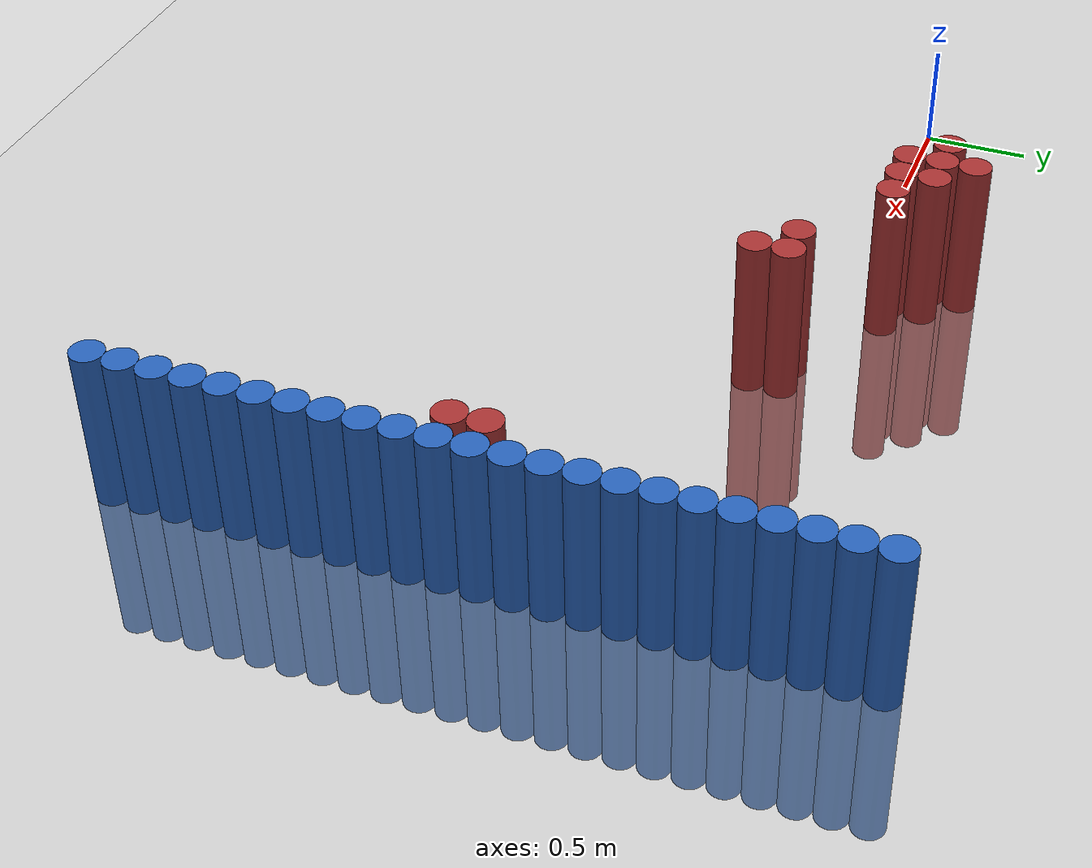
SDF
<sdf version="1.6">
 <world name="default">
  <model name="ground_plane">
   <static>1</static>
   <link name="link">
    <collision name="collision">
     <geometry><plane><normal>0 0 1</normal><size>100 100</size></plane></geometry>
     <surface><friction><ode><mu>100</mu><mu2>50</mu2></ode></friction></surface>
    </collision>
    <visual name="visual">
     <cast_shadows>0</cast_shadows>
     <geometry><plane><normal>0 0 1</normal><size>100 100</size></plane></geometry>
     <material>
      <script><uri>file://media/materials/scripts/gazebo.material</uri><name>Gazebo/Grey</name></script>
     </material>
    </visual>
   </link>
  </model>
  <model name="unit_cylinder_80">
   <static>1</static>
   <pose>3.925000 -2.525000 0.000000 0.000000 0.000000 0.000000</pose>
   <link name="link">
    <inertial>
     <mass>1</mass>
     <inertia><ixx>0.145833</ixx><ixy>0</ixy><ixz>0</ixz><iyy>0.145833</iyy><iyz>0</iyz><izz>0.125</izz></inertia>
    </inertial>
    <collision name="collision">
     <geometry><cylinder><radius>0.075000</radius><length>1.5</length></cylinder></geometry>
    </collision>
    <visual name="visual">
     <geometry><cylinder><radius>0.075000</radius><length>1.5</length></cylinder></geometry>
     <material>
      <ambient>0.152000 0.379000 0.720000 1</ambient>
      <diffuse>0.152000 0.379000 0.720000 1</diffuse>
     </material>
     <material>
      <script><name>Gazebo/Grey</name><uri>file://media/materials/scripts/gazebo.material</uri></script>
     </material>
    </visual>
   </link>
  </model>
  <model name="unit_cylinder_82">
   <static>1</static>
   <pose>3.925000 -2.375000 0.000000 0.000000 0.000000 0.000000</pose>
   <link name="link">
    <inertial>
     <mass>1</mass>
     <inertia><ixx>0.145833</ixx><ixy>0</ixy><ixz>0</ixz><iyy>0.145833</iyy><iyz>0</iyz><izz>0.125</izz></inertia>
    </inertial>
    <collision name="collision">
     <geometry><cylinder><radius>0.075000</radius><length>1.5</length></cylinder></geometry>
    </collision>
    <visual name="visual">
     <geometry><cylinder><radius>0.075000</radius><length>1.5</length></cylinder></geometry>
     <material>
      <ambient>0.152000 0.379000 0.720000 1</ambient>
      <diffuse>0.152000 0.379000 0.720000 1</diffuse>
     </material>
     <material>
      <script><name>Gazebo/Grey</name><uri>file://media/materials/scripts/gazebo.material</uri></script>
     </material>
    </visual>
   </link>
  </model>
  <model name="unit_cylinder_84">
   <static>1</static>
   <pose>3.925000 -2.225000 0.000000 0.000000 0.000000 0.000000</pose>
   <link name="link">
    <inertial>
     <mass>1</mass>
     <inertia><ixx>0.145833</ixx><ixy>0</ixy><ixz>0</ixz><iyy>0.145833</iyy><iyz>0</iyz><izz>0.125</izz></inertia>
    </inertial>
    <collision name="collision">
     <geometry><cylinder><radius>0.075000</radius><length>1.5</length></cylinder></geometry>
    </collision>
    <visual name="visual">
     <geometry><cylinder><radius>0.075000</radius><length>1.5</length></cylinder></geometry>
     <material>
      <ambient>0.152000 0.379000 0.720000 1</ambient>
      <diffuse>0.152000 0.379000 0.720000 1</diffuse>
     </material>
     <material>
      <script><name>Gazebo/Grey</name><uri>file://media/materials/scripts/gazebo.material</uri></script>
     </material>
    </visual>
   </link>
  </model>
  <model name="unit_cylinder_86">
   <static>1</static>
   <pose>3.925000 -2.075000 0.000000 0.000000 0.000000 0.000000</pose>
   <link name="link">
    <inertial>
     <mass>1</mass>
     <inertia><ixx>0.145833</ixx><ixy>0</ixy><ixz>0</ixz><iyy>0.145833</iyy><iyz>0</iyz><izz>0.125</izz></inertia>
    </inertial>
    <collision name="collision">
     <geometry><cylinder><radius>0.075000</radius><length>1.5</length></cylinder></geometry>
    </collision>
    <visual name="visual">
     <geometry><cylinder><radius>0.075000</radius><length>1.5</length></cylinder></geometry>
     <material>
      <ambient>0.152000 0.379000 0.720000 1</ambient>
      <diffuse>0.152000 0.379000 0.720000 1</diffuse>
     </material>
     <material>
      <script><name>Gazebo/Grey</name><uri>file://media/materials/scripts/gazebo.material</uri></script>
     </material>
    </visual>
   </link>
  </model>
  <model name="unit_cylinder_88">
   <static>1</static>
   <pose>3.925000 -1.925000 0.000000 0.000000 0.000000 0.000000</pose>
   <link name="link">
    <inertial>
     <mass>1</mass>
     <inertia><ixx>0.145833</ixx><ixy>0</ixy><ixz>0</ixz><iyy>0.145833</iyy><iyz>0</iyz><izz>0.125</izz></inertia>
    </inertial>
    <collision name="collision">
     <geometry><cylinder><radius>0.075000</radius><length>1.5</length></cylinder></geometry>
    </collision>
    <visual name="visual">
     <geometry><cylinder><radius>0.075000</radius><length>1.5</length></cylinder></geometry>
     <material>
      <ambient>0.152000 0.379000 0.720000 1</ambient>
      <diffuse>0.152000 0.379000 0.720000 1</diffuse>
     </material>
     <material>
      <script><name>Gazebo/Grey</name><uri>file://media/materials/scripts/gazebo.material</uri></script>
     </material>
    </visual>
   </link>
  </model>
  <model name="unit_cylinder_90">
   <static>1</static>
   <pose>3.925000 -1.775000 0.000000 0.000000 0.000000 0.000000</pose>
   <link name="link">
    <inertial>
     <mass>1</mass>
     <inertia><ixx>0.145833</ixx><ixy>0</ixy><ixz>0</ixz><iyy>0.145833</iyy><iyz>0</iyz><izz>0.125</izz></inertia>
    </inertial>
    <collision name="collision">
     <geometry><cylinder><radius>0.075000</radius><length>1.5</length></cylinder></geometry>
    </collision>
    <visual name="visual">
     <geometry><cylinder><radius>0.075000</radius><length>1.5</length></cylinder></geometry>
     <material>
      <ambient>0.152000 0.379000 0.720000 1</ambient>
      <diffuse>0.152000 0.379000 0.720000 1</diffuse>
     </material>
     <material>
      <script><name>Gazebo/Grey</name><uri>file://media/materials/scripts/gazebo.material</uri></script>
     </material>
    </visual>
   </link>
  </model>
  <model name="unit_cylinder_92">
   <static>1</static>
   <pose>3.925000 -1.625000 0.000000 0.000000 0.000000 0.000000</pose>
   <link name="link">
    <inertial>
     <mass>1</mass>
     <inertia><ixx>0.145833</ixx><ixy>0</ixy><ixz>0</ixz><iyy>0.145833</iyy><iyz>0</iyz><izz>0.125</izz></inertia>
    </inertial>
    <collision name="collision">
     <geometry><cylinder><radius>0.075000</radius><length>1.5</length></cylinder></geometry>
    </collision>
    <visual name="visual">
     <geometry><cylinder><radius>0.075000</radius><length>1.5</length></cylinder></geometry>
     <material>
      <ambient>0.152000 0.379000 0.720000 1</ambient>
      <diffuse>0.152000 0.379000 0.720000 1</diffuse>
     </material>
     <material>
      <script><name>Gazebo/Grey</name><uri>file://media/materials/scripts/gazebo.material</uri></script>
     </material>
    </visual>
   </link>
  </model>
  <model name="unit_cylinder_94">
   <static>1</static>
   <pose>3.925000 -1.475000 0.000000 0.000000 0.000000 0.000000</pose>
   <link name="link">
    <inertial>
     <mass>1</mass>
     <inertia><ixx>0.145833</ixx><ixy>0</ixy><ixz>0</ixz><iyy>0.145833</iyy><iyz>0</iyz><izz>0.125</izz></inertia>
    </inertial>
    <collision name="collision">
     <geometry><cylinder><radius>0.075000</radius><length>1.5</length></cylinder></geometry>
    </collision>
    <visual name="visual">
     <geometry><cylinder><radius>0.075000</radius><length>1.5</length></cylinder></geometry>
     <material>
      <ambient>0.152000 0.379000 0.720000 1</ambient>
      <diffuse>0.152000 0.379000 0.720000 1</diffuse>
     </material>
     <material>
      <script><name>Gazebo/Grey</name><uri>file://media/materials/scripts/gazebo.material</uri></script>
     </material>
    </visual>
   </link>
  </model>
  <model name="unit_cylinder_96">
   <static>1</static>
   <pose>3.925000 -1.325000 0.000000 0.000000 0.000000 0.000000</pose>
   <link name="link">
    <inertial>
     <mass>1</mass>
     <inertia><ixx>0.145833</ixx><ixy>0</ixy><ixz>0</ixz><iyy>0.145833</iyy><iyz>0</iyz><izz>0.125</izz></inertia>
    </inertial>
    <collision name="collision">
     <geometry><cylinder><radius>0.075000</radius><length>1.5</length></cylinder></geometry>
    </collision>
    <visual name="visual">
     <geometry><cylinder><radius>0.075000</radius><length>1.5</length></cylinder></geometry>
     <material>
      <ambient>0.152000 0.379000 0.720000 1</ambient>
      <diffuse>0.152000 0.379000 0.720000 1</diffuse>
     </material>
     <material>
      <script><name>Gazebo/Grey</name><uri>file://media/materials/scripts/gazebo.material</uri></script>
     </material>
    </visual>
   </link>
  </model>
  <model name="unit_cylinder_98">
   <static>1</static>
   <pose>3.925000 -1.175000 0.000000 0.000000 0.000000 0.000000</pose>
   <link name="link">
    <inertial>
     <mass>1</mass>
     <inertia><ixx>0.145833</ixx><ixy>0</ixy><ixz>0</ixz><iyy>0.145833</iyy><iyz>0</iyz><izz>0.125</izz></inertia>
    </inertial>
    <collision name="collision">
     <geometry><cylinder><radius>0.075000</radius><length>1.5</length></cylinder></geometry>
    </collision>
    <visual name="visual">
     <geometry><cylinder><radius>0.075000</radius><length>1.5</length></cylinder></geometry>
     <material>
      <ambient>0.152000 0.379000 0.720000 1</ambient>
      <diffuse>0.152000 0.379000 0.720000 1</diffuse>
     </material>
     <material>
      <script><name>Gazebo/Grey</name><uri>file://media/materials/scripts/gazebo.material</uri></script>
     </material>
    </visual>
   </link>
  </model>
  <model name="unit_cylinder_100">
   <static>1</static>
   <pose>3.925000 -1.025000 0.000000 0.000000 0.000000 0.000000</pose>
   <link name="link">
    <inertial>
     <mass>1</mass>
     <inertia><ixx>0.145833</ixx><ixy>0</ixy><ixz>0</ixz><iyy>0.145833</iyy><iyz>0</iyz><izz>0.125</izz></inertia>
    </inertial>
    <collision name="collision">
     <geometry><cylinder><radius>0.075000</radius><length>1.5</length></cylinder></geometry>
    </collision>
    <visual name="visual">
     <geometry><cylinder><radius>0.075000</radius><length>1.5</length></cylinder></geometry>
     <material>
      <ambient>0.152000 0.379000 0.720000 1</ambient>
      <diffuse>0.152000 0.379000 0.720000 1</diffuse>
     </material>
     <material>
      <script><name>Gazebo/Grey</name><uri>file://media/materials/scripts/gazebo.material</uri></script>
     </material>
    </visual>
   </link>
  </model>
  <model name="unit_cylinder_102">
   <static>1</static>
   <pose>3.925000 -0.875000 0.000000 0.000000 0.000000 0.000000</pose>
   <link name="link">
    <inertial>
     <mass>1</mass>
     <inertia><ixx>0.145833</ixx><ixy>0</ixy><ixz>0</ixz><iyy>0.145833</iyy><iyz>0</iyz><izz>0.125</izz></inertia>
    </inertial>
    <collision name="collision">
     <geometry><cylinder><radius>0.075000</radius><length>1.5</length></cylinder></geometry>
    </collision>
    <visual name="visual">
     <geometry><cylinder><radius>0.075000</radius><length>1.5</length></cylinder></geometry>
     <material>
      <ambient>0.152000 0.379000 0.720000 1</ambient>
      <diffuse>0.152000 0.379000 0.720000 1</diffuse>
     </material>
     <material>
      <script><name>Gazebo/Grey</name><uri>file://media/materials/scripts/gazebo.material</uri></script>
     </material>
    </visual>
   </link>
  </model>
  <model name="unit_cylinder_104">
   <static>1</static>
   <pose>3.925000 -0.725000 0.000000 0.000000 0.000000 0.000000</pose>
   <link name="link">
    <inertial>
     <mass>1</mass>
     <inertia><ixx>0.145833</ixx><ixy>0</ixy><ixz>0</ixz><iyy>0.145833</iyy><iyz>0</iyz><izz>0.125</izz></inertia>
    </inertial>
    <collision name="collision">
     <geometry><cylinder><radius>0.075000</radius><length>1.5</length></cylinder></geometry>
    </collision>
    <visual name="visual">
     <geometry><cylinder><radius>0.075000</radius><length>1.5</length></cylinder></geometry>
     <material>
      <ambient>0.152000 0.379000 0.720000 1</ambient>
      <diffuse>0.152000 0.379000 0.720000 1</diffuse>
     </material>
     <material>
      <script><name>Gazebo/Grey</name><uri>file://media/materials/scripts/gazebo.material</uri></script>
     </material>
    </visual>
   </link>
  </model>
  <model name="unit_cylinder_106">
   <static>1</static>
   <pose>3.925000 -0.575000 0.000000 0.000000 0.000000 0.000000</pose>
   <link name="link">
    <inertial>
     <mass>1</mass>
     <inertia><ixx>0.145833</ixx><ixy>0</ixy><ixz>0</ixz><iyy>0.145833</iyy><iyz>0</iyz><izz>0.125</izz></inertia>
    </inertial>
    <collision name="collision">
     <geometry><cylinder><radius>0.075000</radius><length>1.5</length></cylinder></geometry>
    </collision>
    <visual name="visual">
     <geometry><cylinder><radius>0.075000</radius><length>1.5</length></cylinder></geometry>
     <material>
      <ambient>0.152000 0.379000 0.720000 1</ambient>
      <diffuse>0.152000 0.379000 0.720000 1</diffuse>
     </material>
     <material>
      <script><name>Gazebo/Grey</name><uri>file://media/materials/scripts/gazebo.material</uri></script>
     </material>
    </visual>
   </link>
  </model>
  <model name="unit_cylinder_108">
   <static>1</static>
   <pose>3.925000 -0.425000 0.000000 0.000000 0.000000 0.000000</pose>
   <link name="link">
    <inertial>
     <mass>1</mass>
     <inertia><ixx>0.145833</ixx><ixy>0</ixy><ixz>0</ixz><iyy>0.145833</iyy><iyz>0</iyz><izz>0.125</izz></inertia>
    </inertial>
    <collision name="collision">
     <geometry><cylinder><radius>0.075000</radius><length>1.5</length></cylinder></geometry>
    </collision>
    <visual name="visual">
     <geometry><cylinder><radius>0.075000</radius><length>1.5</length></cylinder></geometry>
     <material>
      <ambient>0.152000 0.379000 0.720000 1</ambient>
      <diffuse>0.152000 0.379000 0.720000 1</diffuse>
     </material>
     <material>
      <script><name>Gazebo/Grey</name><uri>file://media/materials/scripts/gazebo.material</uri></script>
     </material>
    </visual>
   </link>
  </model>
  <model name="unit_cylinder_110">
   <static>1</static>
   <pose>3.925000 -0.275000 0.000000 0.000000 0.000000 0.000000</pose>
   <link name="link">
    <inertial>
     <mass>1</mass>
     <inertia><ixx>0.145833</ixx><ixy>0</ixy><ixz>0</ixz><iyy>0.145833</iyy><iyz>0</iyz><izz>0.125</izz></inertia>
    </inertial>
    <collision name="collision">
     <geometry><cylinder><radius>0.075000</radius><length>1.5</length></cylinder></geometry>
    </collision>
    <visual name="visual">
     <geometry><cylinder><radius>0.075000</radius><length>1.5</length></cylinder></geometry>
     <material>
      <ambient>0.152000 0.379000 0.720000 1</ambient>
      <diffuse>0.152000 0.379000 0.720000 1</diffuse>
     </material>
     <material>
      <script><name>Gazebo/Grey</name><uri>file://media/materials/scripts/gazebo.material</uri></script>
     </material>
    </visual>
   </link>
  </model>
  <model name="unit_cylinder_112">
   <static>1</static>
   <pose>3.925000 -0.125000 0.000000 0.000000 0.000000 0.000000</pose>
   <link name="link">
    <inertial>
     <mass>1</mass>
     <inertia><ixx>0.145833</ixx><ixy>0</ixy><ixz>0</ixz><iyy>0.145833</iyy><iyz>0</iyz><izz>0.125</izz></inertia>
    </inertial>
    <collision name="collision">
     <geometry><cylinder><radius>0.075000</radius><length>1.5</length></cylinder></geometry>
    </collision>
    <visual name="visual">
     <geometry><cylinder><radius>0.075000</radius><length>1.5</length></cylinder></geometry>
     <material>
      <ambient>0.152000 0.379000 0.720000 1</ambient>
      <diffuse>0.152000 0.379000 0.720000 1</diffuse>
     </material>
     <material>
      <script><name>Gazebo/Grey</name><uri>file://media/materials/scripts/gazebo.material</uri></script>
     </material>
    </visual>
   </link>
  </model>
  <model name="unit_cylinder_114">
   <static>1</static>
   <pose>3.925000 0.025000 0.000000 0.000000 0.000000 0.000000</pose>
   <link name="link">
    <inertial>
     <mass>1</mass>
     <inertia><ixx>0.145833</ixx><ixy>0</ixy><ixz>0</ixz><iyy>0.145833</iyy><iyz>0</iyz><izz>0.125</izz></inertia>
    </inertial>
    <collision name="collision">
     <geometry><cylinder><radius>0.075000</radius><length>1.5</length></cylinder></geometry>
    </collision>
    <visual name="visual">
     <geometry><cylinder><radius>0.075000</radius><length>1.5</length></cylinder></geometry>
     <material>
      <ambient>0.152000 0.379000 0.720000 1</ambient>
      <diffuse>0.152000 0.379000 0.720000 1</diffuse>
     </material>
     <material>
      <script><name>Gazebo/Grey</name><uri>file://media/materials/scripts/gazebo.material</uri></script>
     </material>
    </visual>
   </link>
  </model>
  <model name="unit_cylinder_116">
   <static>1</static>
   <pose>3.925000 0.175000 0.000000 0.000000 0.000000 0.000000</pose>
   <link name="link">
    <inertial>
     <mass>1</mass>
     <inertia><ixx>0.145833</ixx><ixy>0</ixy><ixz>0</ixz><iyy>0.145833</iyy><iyz>0</iyz><izz>0.125</izz></inertia>
    </inertial>
    <collision name="collision">
     <geometry><cylinder><radius>0.075000</radius><length>1.5</length></cylinder></geometry>
    </collision>
    <visual name="visual">
     <geometry><cylinder><radius>0.075000</radius><length>1.5</length></cylinder></geometry>
     <material>
      <ambient>0.152000 0.379000 0.720000 1</ambient>
      <diffuse>0.152000 0.379000 0.720000 1</diffuse>
     </material>
     <material>
      <script><name>Gazebo/Grey</name><uri>file://media/materials/scripts/gazebo.material</uri></script>
     </material>
    </visual>
   </link>
  </model>
  <model name="unit_cylinder_118">
   <static>1</static>
   <pose>3.925000 0.325000 0.000000 0.000000 0.000000 0.000000</pose>
   <link name="link">
    <inertial>
     <mass>1</mass>
     <inertia><ixx>0.145833</ixx><ixy>0</ixy><ixz>0</ixz><iyy>0.145833</iyy><iyz>0</iyz><izz>0.125</izz></inertia>
    </inertial>
    <collision name="collision">
     <geometry><cylinder><radius>0.075000</radius><length>1.5</length></cylinder></geometry>
    </collision>
    <visual name="visual">
     <geometry><cylinder><radius>0.075000</radius><length>1.5</length></cylinder></geometry>
     <material>
      <ambient>0.152000 0.379000 0.720000 1</ambient>
      <diffuse>0.152000 0.379000 0.720000 1</diffuse>
     </material>
     <material>
      <script><name>Gazebo/Grey</name><uri>file://media/materials/scripts/gazebo.material</uri></script>
     </material>
    </visual>
   </link>
  </model>
  <model name="unit_cylinder_120">
   <static>1</static>
   <pose>3.925000 0.475000 0.000000 0.000000 0.000000 0.000000</pose>
   <link name="link">
    <inertial>
     <mass>1</mass>
     <inertia><ixx>0.145833</ixx><ixy>0</ixy><ixz>0</ixz><iyy>0.145833</iyy><iyz>0</iyz><izz>0.125</izz></inertia>
    </inertial>
    <collision name="collision">
     <geometry><cylinder><radius>0.075000</radius><length>1.5</length></cylinder></geometry>
    </collision>
    <visual name="visual">
     <geometry><cylinder><radius>0.075000</radius><length>1.5</length></cylinder></geometry>
     <material>
      <ambient>0.152000 0.379000 0.720000 1</ambient>
      <diffuse>0.152000 0.379000 0.720000 1</diffuse>
     </material>
     <material>
      <script><name>Gazebo/Grey</name><uri>file://media/materials/scripts/gazebo.material</uri></script>
     </material>
    </visual>
   </link>
  </model>
  <model name="unit_cylinder_122">
   <static>1</static>
   <pose>3.925000 0.625000 0.000000 0.000000 0.000000 0.000000</pose>
   <link name="link">
    <inertial>
     <mass>1</mass>
     <inertia><ixx>0.145833</ixx><ixy>0</ixy><ixz>0</ixz><iyy>0.145833</iyy><iyz>0</iyz><izz>0.125</izz></inertia>
    </inertial>
    <collision name="collision">
     <geometry><cylinder><radius>0.075000</radius><length>1.5</length></cylinder></geometry>
    </collision>
    <visual name="visual">
     <geometry><cylinder><radius>0.075000</radius><length>1.5</length></cylinder></geometry>
     <material>
      <ambient>0.152000 0.379000 0.720000 1</ambient>
      <diffuse>0.152000 0.379000 0.720000 1</diffuse>
     </material>
     <material>
      <script><name>Gazebo/Grey</name><uri>file://media/materials/scripts/gazebo.material</uri></script>
     </material>
    </visual>
   </link>
  </model>
  <model name="unit_cylinder_124">
   <static>1</static>
   <pose>3.925000 0.775000 0.000000 0.000000 0.000000 0.000000</pose>
   <link name="link">
    <inertial>
     <mass>1</mass>
     <inertia><ixx>0.145833</ixx><ixy>0</ixy><ixz>0</ixz><iyy>0.145833</iyy><iyz>0</iyz><izz>0.125</izz></inertia>
    </inertial>
    <collision name="collision">
     <geometry><cylinder><radius>0.075000</radius><length>1.5</length></cylinder></geometry>
    </collision>
    <visual name="visual">
     <geometry><cylinder><radius>0.075000</radius><length>1.5</length></cylinder></geometry>
     <material>
      <ambient>0.152000 0.379000 0.720000 1</ambient>
      <diffuse>0.152000 0.379000 0.720000 1</diffuse>
     </material>
     <material>
      <script><name>Gazebo/Grey</name><uri>file://media/materials/scripts/gazebo.material</uri></script>
     </material>
    </visual>
   </link>
  </model>
  <model name="unit_cylinder_322">
   <static>1</static>
   <pose>1.225000 0.325000 0.000000 0.000000 0.000000 0.000000</pose>
   <link name="link">
    <inertial>
     <mass>1</mass>
     <inertia><ixx>0.145833</ixx><ixy>0</ixy><ixz>0</ixz><iyy>0.145833</iyy><iyz>0</iyz><izz>0.125</izz></inertia>
    </inertial>
    <collision name="collision">
     <geometry><cylinder><radius>0.075000</radius><length>1.5</length></cylinder></geometry>
    </collision>
    <visual name="visual">
     <geometry><cylinder><radius>0.075000</radius><length>1.5</length></cylinder></geometry>
     <material>
      <ambient>0.648000 0.192000 0.192000 1</ambient>
      <diffuse>0.648000 0.192000 0.192000 1</diffuse>
     </material>
     <material>
      <script><name>Gazebo/Grey</name><uri>file://media/materials/scripts/gazebo.material</uri></script>
     </material>
    </visual>
   </link>
  </model>
  <model name="unit_cylinder_324">
   <static>1</static>
   <pose>1.375000 0.175000 0.000000 0.000000 0.000000 0.000000</pose>
   <link name="link">
    <inertial>
     <mass>1</mass>
     <inertia><ixx>0.145833</ixx><ixy>0</ixy><ixz>0</ixz><iyy>0.145833</iyy><iyz>0</iyz><izz>0.125</izz></inertia>
    </inertial>
    <collision name="collision">
     <geometry><cylinder><radius>0.075000</radius><length>1.5</length></cylinder></geometry>
    </collision>
    <visual name="visual">
     <geometry><cylinder><radius>0.075000</radius><length>1.5</length></cylinder></geometry>
     <material>
      <ambient>0.648000 0.192000 0.192000 1</ambient>
      <diffuse>0.648000 0.192000 0.192000 1</diffuse>
     </material>
     <material>
      <script><name>Gazebo/Grey</name><uri>file://media/materials/scripts/gazebo.material</uri></script>
     </material>
    </visual>
   </link>
  </model>
  <model name="unit_cylinder_325">
   <static>1</static>
   <pose>1.375000 0.325000 0.000000 0.000000 0.000000 0.000000</pose>
   <link name="link">
    <inertial>
     <mass>1</mass>
     <inertia><ixx>0.145833</ixx><ixy>0</ixy><ixz>0</ixz><iyy>0.145833</iyy><iyz>0</iyz><izz>0.125</izz></inertia>
    </inertial>
    <collision name="collision">
     <geometry><cylinder><radius>0.075000</radius><length>1.5</length></cylinder></geometry>
    </collision>
    <visual name="visual">
     <geometry><cylinder><radius>0.075000</radius><length>1.5</length></cylinder></geometry>
     <material>
      <ambient>0.648000 0.192000 0.192000 1</ambient>
      <diffuse>0.648000 0.192000 0.192000 1</diffuse>
     </material>
     <material>
      <script><name>Gazebo/Grey</name><uri>file://media/materials/scripts/gazebo.material</uri></script>
     </material>
    </visual>
   </link>
  </model>
  <model name="unit_cylinder_326">
   <static>1</static>
   <pose>1.375000 0.475000 0.000000 0.000000 0.000000 0.000000</pose>
   <link name="link">
    <inertial>
     <mass>1</mass>
     <inertia><ixx>0.145833</ixx><ixy>0</ixy><ixz>0</ixz><iyy>0.145833</iyy><iyz>0</iyz><izz>0.125</izz></inertia>
    </inertial>
    <collision name="collision">
     <geometry><cylinder><radius>0.075000</radius><length>1.5</length></cylinder></geometry>
    </collision>
    <visual name="visual">
     <geometry><cylinder><radius>0.075000</radius><length>1.5</length></cylinder></geometry>
     <material>
      <ambient>0.648000 0.192000 0.192000 1</ambient>
      <diffuse>0.648000 0.192000 0.192000 1</diffuse>
     </material>
     <material>
      <script><name>Gazebo/Grey</name><uri>file://media/materials/scripts/gazebo.material</uri></script>
     </material>
    </visual>
   </link>
  </model>
  <model name="unit_cylinder_327">
   <static>1</static>
   <pose>1.525000 0.175000 0.000000 0.000000 0.000000 0.000000</pose>
   <link name="link">
    <inertial>
     <mass>1</mass>
     <inertia><ixx>0.145833</ixx><ixy>0</ixy><ixz>0</ixz><iyy>0.145833</iyy><iyz>0</iyz><izz>0.125</izz></inertia>
    </inertial>
    <collision name="collision">
     <geometry><cylinder><radius>0.075000</radius><length>1.5</length></cylinder></geometry>
    </collision>
    <visual name="visual">
     <geometry><cylinder><radius>0.075000</radius><length>1.5</length></cylinder></geometry>
     <material>
      <ambient>0.648000 0.192000 0.192000 1</ambient>
      <diffuse>0.648000 0.192000 0.192000 1</diffuse>
     </material>
     <material>
      <script><name>Gazebo/Grey</name><uri>file://media/materials/scripts/gazebo.material</uri></script>
     </material>
    </visual>
   </link>
  </model>
  <model name="unit_cylinder_328">
   <static>1</static>
   <pose>1.525000 0.325000 0.000000 0.000000 0.000000 0.000000</pose>
   <link name="link">
    <inertial>
     <mass>1</mass>
     <inertia><ixx>0.145833</ixx><ixy>0</ixy><ixz>0</ixz><iyy>0.145833</iyy><iyz>0</iyz><izz>0.125</izz></inertia>
    </inertial>
    <collision name="collision">
     <geometry><cylinder><radius>0.075000</radius><length>1.5</length></cylinder></geometry>
    </collision>
    <visual name="visual">
     <geometry><cylinder><radius>0.075000</radius><length>1.5</length></cylinder></geometry>
     <material>
      <ambient>0.648000 0.192000 0.192000 1</ambient>
      <diffuse>0.648000 0.192000 0.192000 1</diffuse>
     </material>
     <material>
      <script><name>Gazebo/Grey</name><uri>file://media/materials/scripts/gazebo.material</uri></script>
     </material>
    </visual>
   </link>
  </model>
  <model name="unit_cylinder_330">
   <static>1</static>
   <pose>1.675000 0.175000 0.000000 0.000000 0.000000 0.000000</pose>
   <link name="link">
    <inertial>
     <mass>1</mass>
     <inertia><ixx>0.145833</ixx><ixy>0</ixy><ixz>0</ixz><iyy>0.145833</iyy><iyz>0</iyz><izz>0.125</izz></inertia>
    </inertial>
    <collision name="collision">
     <geometry><cylinder><radius>0.075000</radius><length>1.5</length></cylinder></geometry>
    </collision>
    <visual name="visual">
     <geometry><cylinder><radius>0.075000</radius><length>1.5</length></cylinder></geometry>
     <material>
      <ambient>0.648000 0.192000 0.192000 1</ambient>
      <diffuse>0.648000 0.192000 0.192000 1</diffuse>
     </material>
     <material>
      <script><name>Gazebo/Grey</name><uri>file://media/materials/scripts/gazebo.material</uri></script>
     </material>
    </visual>
   </link>
  </model>
  <model name="unit_cylinder_341">
   <static>1</static>
   <pose>2.125000 -0.125000 0.000000 0.000000 0.000000 0.000000</pose>
   <link name="link">
    <inertial>
     <mass>1</mass>
     <inertia><ixx>0.145833</ixx><ixy>0</ixy><ixz>0</ixz><iyy>0.145833</iyy><iyz>0</iyz><izz>0.125</izz></inertia>
    </inertial>
    <collision name="collision">
     <geometry><cylinder><radius>0.075000</radius><length>1.5</length></cylinder></geometry>
    </collision>
    <visual name="visual">
     <geometry><cylinder><radius>0.075000</radius><length>1.5</length></cylinder></geometry>
     <material>
      <ambient>0.648000 0.192000 0.192000 1</ambient>
      <diffuse>0.648000 0.192000 0.192000 1</diffuse>
     </material>
     <material>
      <script><name>Gazebo/Grey</name><uri>file://media/materials/scripts/gazebo.material</uri></script>
     </material>
    </visual>
   </link>
  </model>
  <model name="unit_cylinder_344">
   <static>1</static>
   <pose>2.275000 -0.275000 0.000000 0.000000 0.000000 0.000000</pose>
   <link name="link">
    <inertial>
     <mass>1</mass>
     <inertia><ixx>0.145833</ixx><ixy>0</ixy><ixz>0</ixz><iyy>0.145833</iyy><iyz>0</iyz><izz>0.125</izz></inertia>
    </inertial>
    <collision name="collision">
     <geometry><cylinder><radius>0.075000</radius><length>1.5</length></cylinder></geometry>
    </collision>
    <visual name="visual">
     <geometry><cylinder><radius>0.075000</radius><length>1.5</length></cylinder></geometry>
     <material>
      <ambient>0.648000 0.192000 0.192000 1</ambient>
      <diffuse>0.648000 0.192000 0.192000 1</diffuse>
     </material>
     <material>
      <script><name>Gazebo/Grey</name><uri>file://media/materials/scripts/gazebo.material</uri></script>
     </material>
    </visual>
   </link>
  </model>
  <model name="unit_cylinder_345">
   <static>1</static>
   <pose>2.275000 -0.125000 0.000000 0.000000 0.000000 0.000000</pose>
   <link name="link">
    <inertial>
     <mass>1</mass>
     <inertia><ixx>0.145833</ixx><ixy>0</ixy><ixz>0</ixz><iyy>0.145833</iyy><iyz>0</iyz><izz>0.125</izz></inertia>
    </inertial>
    <collision name="collision">
     <geometry><cylinder><radius>0.075000</radius><length>1.5</length></cylinder></geometry>
    </collision>
    <visual name="visual">
     <geometry><cylinder><radius>0.075000</radius><length>1.5</length></cylinder></geometry>
     <material>
      <ambient>0.648000 0.192000 0.192000 1</ambient>
      <diffuse>0.648000 0.192000 0.192000 1</diffuse>
     </material>
     <material>
      <script><name>Gazebo/Grey</name><uri>file://media/materials/scripts/gazebo.material</uri></script>
     </material>
    </visual>
   </link>
  </model>
  <model name="unit_cylinder_358">
   <static>1</static>
   <pose>3.775000 -1.025000 0.000000 0.000000 0.000000 0.000000</pose>
   <link name="link">
    <inertial>
     <mass>1</mass>
     <inertia><ixx>0.145833</ixx><ixy>0</ixy><ixz>0</ixz><iyy>0.145833</iyy><iyz>0</iyz><izz>0.125</izz></inertia>
    </inertial>
    <collision name="collision">
     <geometry><cylinder><radius>0.075000</radius><length>1.5</length></cylinder></geometry>
    </collision>
    <visual name="visual">
     <geometry><cylinder><radius>0.075000</radius><length>1.5</length></cylinder></geometry>
     <material>
      <ambient>0.648000 0.192000 0.192000 1</ambient>
      <diffuse>0.648000 0.192000 0.192000 1</diffuse>
     </material>
     <material>
      <script><name>Gazebo/Grey</name><uri>file://media/materials/scripts/gazebo.material</uri></script>
     </material>
    </visual>
   </link>
  </model>
  <model name="unit_cylinder_359">
   <static>1</static>
   <pose>3.775000 -0.875000 0.000000 0.000000 0.000000 0.000000</pose>
   <link name="link">
    <inertial>
     <mass>1</mass>
     <inertia><ixx>0.145833</ixx><ixy>0</ixy><ixz>0</ixz><iyy>0.145833</iyy><iyz>0</iyz><izz>0.125</izz></inertia>
    </inertial>
    <collision name="collision">
     <geometry><cylinder><radius>0.075000</radius><length>1.5</length></cylinder></geometry>
    </collision>
    <visual name="visual">
     <geometry><cylinder><radius>0.075000</radius><length>1.5</length></cylinder></geometry>
     <material>
      <ambient>0.648000 0.192000 0.192000 1</ambient>
      <diffuse>0.648000 0.192000 0.192000 1</diffuse>
     </material>
     <material>
      <script><name>Gazebo/Grey</name><uri>file://media/materials/scripts/gazebo.material</uri></script>
     </material>
    </visual>
   </link>
  </model>
  <model name="unit_cylinder_374">
   <static>1</static>
   <pose>3.925000 -1.925000 0.000000 0.000000 0.000000 0.000000</pose>
   <link name="link">
    <inertial>
     <mass>1</mass>
     <inertia><ixx>0.145833</ixx><ixy>0</ixy><ixz>0</ixz><iyy>0.145833</iyy><iyz>0</iyz><izz>0.125</izz></inertia>
    </inertial>
    <collision name="collision">
     <geometry><cylinder><radius>0.075000</radius><length>1.5</length></cylinder></geometry>
    </collision>
    <visual name="visual">
     <geometry><cylinder><radius>0.075000</radius><length>1.5</length></cylinder></geometry>
     <material>
      <ambient>0.152000 0.379000 0.720000 1</ambient>
      <diffuse>0.152000 0.379000 0.720000 1</diffuse>
     </material>
     <material>
      <script><name>Gazebo/Grey</name><uri>file://media/materials/scripts/gazebo.material</uri></script>
     </material>
    </visual>
   </link>
  </model>
  <model name="unit_cylinder_375">
   <static>1</static>
   <pose>3.925000 -1.775000 0.000000 0.000000 0.000000 0.000000</pose>
   <link name="link">
    <inertial>
     <mass>1</mass>
     <inertia><ixx>0.145833</ixx><ixy>0</ixy><ixz>0</ixz><iyy>0.145833</iyy><iyz>0</iyz><izz>0.125</izz></inertia>
    </inertial>
    <collision name="collision">
     <geometry><cylinder><radius>0.075000</radius><length>1.5</length></cylinder></geometry>
    </collision>
    <visual name="visual">
     <geometry><cylinder><radius>0.075000</radius><length>1.5</length></cylinder></geometry>
     <material>
      <ambient>0.152000 0.379000 0.720000 1</ambient>
      <diffuse>0.152000 0.379000 0.720000 1</diffuse>
     </material>
     <material>
      <script><name>Gazebo/Grey</name><uri>file://media/materials/scripts/gazebo.material</uri></script>
     </material>
    </visual>
   </link>
  </model>
  <model name="unit_cylinder_376">
   <static>1</static>
   <pose>3.925000 -1.625000 0.000000 0.000000 0.000000 0.000000</pose>
   <link name="link">
    <inertial>
     <mass>1</mass>
     <inertia><ixx>0.145833</ixx><ixy>0</ixy><ixz>0</ixz><iyy>0.145833</iyy><iyz>0</iyz><izz>0.125</izz></inertia>
    </inertial>
    <collision name="collision">
     <geometry><cylinder><radius>0.075000</radius><length>1.5</length></cylinder></geometry>
    </collision>
    <visual name="visual">
     <geometry><cylinder><radius>0.075000</radius><length>1.5</length></cylinder></geometry>
     <material>
      <ambient>0.152000 0.379000 0.720000 1</ambient>
      <diffuse>0.152000 0.379000 0.720000 1</diffuse>
     </material>
     <material>
      <script><name>Gazebo/Grey</name><uri>file://media/materials/scripts/gazebo.material</uri></script>
     </material>
    </visual>
   </link>
  </model>
  <model name="unit_cylinder_377">
   <static>1</static>
   <pose>3.925000 -1.475000 0.000000 0.000000 0.000000 0.000000</pose>
   <link name="link">
    <inertial>
     <mass>1</mass>
     <inertia><ixx>0.145833</ixx><ixy>0</ixy><ixz>0</ixz><iyy>0.145833</iyy><iyz>0</iyz><izz>0.125</izz></inertia>
    </inertial>
    <collision name="collision">
     <geometry><cylinder><radius>0.075000</radius><length>1.5</length></cylinder></geometry>
    </collision>
    <visual name="visual">
     <geometry><cylinder><radius>0.075000</radius><length>1.5</length></cylinder></geometry>
     <material>
      <ambient>0.152000 0.379000 0.720000 1</ambient>
      <diffuse>0.152000 0.379000 0.720000 1</diffuse>
     </material>
     <material>
      <script><name>Gazebo/Grey</name><uri>file://media/materials/scripts/gazebo.material</uri></script>
     </material>
    </visual>
   </link>
  </model>
  <model name="unit_cylinder_378">
   <static>1</static>
   <pose>3.925000 -1.325000 0.000000 0.000000 0.000000 0.000000</pose>
   <link name="link">
    <inertial>
     <mass>1</mass>
     <inertia><ixx>0.145833</ixx><ixy>0</ixy><ixz>0</ixz><iyy>0.145833</iyy><iyz>0</iyz><izz>0.125</izz></inertia>
    </inertial>
    <collision name="collision">
     <geometry><cylinder><radius>0.075000</radius><length>1.5</length></cylinder></geometry>
    </collision>
    <visual name="visual">
     <geometry><cylinder><radius>0.075000</radius><length>1.5</length></cylinder></geometry>
     <material>
      <ambient>0.152000 0.379000 0.720000 1</ambient>
      <diffuse>0.152000 0.379000 0.720000 1</diffuse>
     </material>
     <material>
      <script><name>Gazebo/Grey</name><uri>file://media/materials/scripts/gazebo.material</uri></script>
     </material>
    </visual>
   </link>
  </model>
  <model name="unit_cylinder_379">
   <static>1</static>
   <pose>3.925000 -1.175000 0.000000 0.000000 0.000000 0.000000</pose>
   <link name="link">
    <inertial>
     <mass>1</mass>
     <inertia><ixx>0.145833</ixx><ixy>0</ixy><ixz>0</ixz><iyy>0.145833</iyy><iyz>0</iyz><izz>0.125</izz></inertia>
    </inertial>
    <collision name="collision">
     <geometry><cylinder><radius>0.075000</radius><length>1.5</length></cylinder></geometry>
    </collision>
    <visual name="visual">
     <geometry><cylinder><radius>0.075000</radius><length>1.5</length></cylinder></geometry>
     <material>
      <ambient>0.152000 0.379000 0.720000 1</ambient>
      <diffuse>0.152000 0.379000 0.720000 1</diffuse>
     </material>
     <material>
      <script><name>Gazebo/Grey</name><uri>file://media/materials/scripts/gazebo.material</uri></script>
     </material>
    </visual>
   </link>
  </model>
  <model name="unit_cylinder_380">
   <static>1</static>
   <pose>3.925000 -1.025000 0.000000 0.000000 0.000000 0.000000</pose>
   <link name="link">
    <inertial>
     <mass>1</mass>
     <inertia><ixx>0.145833</ixx><ixy>0</ixy><ixz>0</ixz><iyy>0.145833</iyy><iyz>0</iyz><izz>0.125</izz></inertia>
    </inertial>
    <collision name="collision">
     <geometry><cylinder><radius>0.075000</radius><length>1.5</length></cylinder></geometry>
    </collision>
    <visual name="visual">
     <geometry><cylinder><radius>0.075000</radius><length>1.5</length></cylinder></geometry>
     <material>
      <ambient>0.152000 0.379000 0.720000 1</ambient>
      <diffuse>0.152000 0.379000 0.720000 1</diffuse>
     </material>
     <material>
      <script><name>Gazebo/Grey</name><uri>file://media/materials/scripts/gazebo.material</uri></script>
     </material>
    </visual>
   </link>
  </model>
  <model name="unit_cylinder_381">
   <static>1</static>
   <pose>3.925000 -0.875000 0.000000 0.000000 0.000000 0.000000</pose>
   <link name="link">
    <inertial>
     <mass>1</mass>
     <inertia><ixx>0.145833</ixx><ixy>0</ixy><ixz>0</ixz><iyy>0.145833</iyy><iyz>0</iyz><izz>0.125</izz></inertia>
    </inertial>
    <collision name="collision">
     <geometry><cylinder><radius>0.075000</radius><length>1.5</length></cylinder></geometry>
    </collision>
    <visual name="visual">
     <geometry><cylinder><radius>0.075000</radius><length>1.5</length></cylinder></geometry>
     <material>
      <ambient>0.152000 0.379000 0.720000 1</ambient>
      <diffuse>0.152000 0.379000 0.720000 1</diffuse>
     </material>
     <material>
      <script><name>Gazebo/Grey</name><uri>file://media/materials/scripts/gazebo.material</uri></script>
     </material>
    </visual>
   </link>
  </model>
  <model name="unit_cylinder_382">
   <static>1</static>
   <pose>3.925000 -0.725000 0.000000 0.000000 0.000000 0.000000</pose>
   <link name="link">
    <inertial>
     <mass>1</mass>
     <inertia><ixx>0.145833</ixx><ixy>0</ixy><ixz>0</ixz><iyy>0.145833</iyy><iyz>0</iyz><izz>0.125</izz></inertia>
    </inertial>
    <collision name="collision">
     <geometry><cylinder><radius>0.075000</radius><length>1.5</length></cylinder></geometry>
    </collision>
    <visual name="visual">
     <geometry><cylinder><radius>0.075000</radius><length>1.5</length></cylinder></geometry>
     <material>
      <ambient>0.152000 0.379000 0.720000 1</ambient>
      <diffuse>0.152000 0.379000 0.720000 1</diffuse>
     </material>
     <material>
      <script><name>Gazebo/Grey</name><uri>file://media/materials/scripts/gazebo.material</uri></script>
     </material>
    </visual>
   </link>
  </model>
  <model name="unit_cylinder_383">
   <static>1</static>
   <pose>3.925000 -0.575000 0.000000 0.000000 0.000000 0.000000</pose>
   <link name="link">
    <inertial>
     <mass>1</mass>
     <inertia><ixx>0.145833</ixx><ixy>0</ixy><ixz>0</ixz><iyy>0.145833</iyy><iyz>0</iyz><izz>0.125</izz></inertia>
    </inertial>
    <collision name="collision">
     <geometry><cylinder><radius>0.075000</radius><length>1.5</length></cylinder></geometry>
    </collision>
    <visual name="visual">
     <geometry><cylinder><radius>0.075000</radius><length>1.5</length></cylinder></geometry>
     <material>
      <ambient>0.152000 0.379000 0.720000 1</ambient>
      <diffuse>0.152000 0.379000 0.720000 1</diffuse>
     </material>
     <material>
      <script><name>Gazebo/Grey</name><uri>file://media/materials/scripts/gazebo.material</uri></script>
     </material>
    </visual>
   </link>
  </model>
  <model name="unit_cylinder_384">
   <static>1</static>
   <pose>3.925000 -0.425000 0.000000 0.000000 0.000000 0.000000</pose>
   <link name="link">
    <inertial>
     <mass>1</mass>
     <inertia><ixx>0.145833</ixx><ixy>0</ixy><ixz>0</ixz><iyy>0.145833</iyy><iyz>0</iyz><izz>0.125</izz></inertia>
    </inertial>
    <collision name="collision">
     <geometry><cylinder><radius>0.075000</radius><length>1.5</length></cylinder></geometry>
    </collision>
    <visual name="visual">
     <geometry><cylinder><radius>0.075000</radius><length>1.5</length></cylinder></geometry>
     <material>
      <ambient>0.152000 0.379000 0.720000 1</ambient>
      <diffuse>0.152000 0.379000 0.720000 1</diffuse>
     </material>
     <material>
      <script><name>Gazebo/Grey</name><uri>file://media/materials/scripts/gazebo.material</uri></script>
     </material>
    </visual>
   </link>
  </model>
  <model name="unit_cylinder_385">
   <static>1</static>
   <pose>3.925000 -0.275000 0.000000 0.000000 0.000000 0.000000</pose>
   <link name="link">
    <inertial>
     <mass>1</mass>
     <inertia><ixx>0.145833</ixx><ixy>0</ixy><ixz>0</ixz><iyy>0.145833</iyy><iyz>0</iyz><izz>0.125</izz></inertia>
    </inertial>
    <collision name="collision">
     <geometry><cylinder><radius>0.075000</radius><length>1.5</length></cylinder></geometry>
    </collision>
    <visual name="visual">
     <geometry><cylinder><radius>0.075000</radius><length>1.5</length></cylinder></geometry>
     <material>
      <ambient>0.152000 0.379000 0.720000 1</ambient>
      <diffuse>0.152000 0.379000 0.720000 1</diffuse>
     </material>
     <material>
      <script><name>Gazebo/Grey</name><uri>file://media/materials/scripts/gazebo.material</uri></script>
     </material>
    </visual>
   </link>
  </model>
  <model name="unit_cylinder_386">
   <static>1</static>
   <pose>3.925000 -0.125000 0.000000 0.000000 0.000000 0.000000</pose>
   <link name="link">
    <inertial>
     <mass>1</mass>
     <inertia><ixx>0.145833</ixx><ixy>0</ixy><ixz>0</ixz><iyy>0.145833</iyy><iyz>0</iyz><izz>0.125</izz></inertia>
    </inertial>
    <collision name="collision">
     <geometry><cylinder><radius>0.075000</radius><length>1.5</length></cylinder></geometry>
    </collision>
    <visual name="visual">
     <geometry><cylinder><radius>0.075000</radius><length>1.5</length></cylinder></geometry>
     <material>
      <ambient>0.152000 0.379000 0.720000 1</ambient>
      <diffuse>0.152000 0.379000 0.720000 1</diffuse>
     </material>
     <material>
      <script><name>Gazebo/Grey</name><uri>file://media/materials/scripts/gazebo.material</uri></script>
     </material>
    </visual>
   </link>
  </model>
  <model name="unit_cylinder_387">
   <static>1</static>
   <pose>3.925000 0.025000 0.000000 0.000000 0.000000 0.000000</pose>
   <link name="link">
    <inertial>
     <mass>1</mass>
     <inertia><ixx>0.145833</ixx><ixy>0</ixy><ixz>0</ixz><iyy>0.145833</iyy><iyz>0</iyz><izz>0.125</izz></inertia>
    </inertial>
    <collision name="collision">
     <geometry><cylinder><radius>0.075000</radius><length>1.5</length></cylinder></geometry>
    </collision>
    <visual name="visual">
     <geometry><cylinder><radius>0.075000</radius><length>1.5</length></cylinder></geometry>
     <material>
      <ambient>0.152000 0.379000 0.720000 1</ambient>
      <diffuse>0.152000 0.379000 0.720000 1</diffuse>
     </material>
     <material>
      <script><name>Gazebo/Grey</name><uri>file://media/materials/scripts/gazebo.material</uri></script>
     </material>
    </visual>
   </link>
  </model>
  <model name="unit_cylinder_388">
   <static>1</static>
   <pose>3.925000 0.175000 0.000000 0.000000 0.000000 0.000000</pose>
   <link name="link">
    <inertial>
     <mass>1</mass>
     <inertia><ixx>0.145833</ixx><ixy>0</ixy><ixz>0</ixz><iyy>0.145833</iyy><iyz>0</iyz><izz>0.125</izz></inertia>
    </inertial>
    <collision name="collision">
     <geometry><cylinder><radius>0.075000</radius><length>1.5</length></cylinder></geometry>
    </collision>
    <visual name="visual">
     <geometry><cylinder><radius>0.075000</radius><length>1.5</length></cylinder></geometry>
     <material>
      <ambient>0.152000 0.379000 0.720000 1</ambient>
      <diffuse>0.152000 0.379000 0.720000 1</diffuse>
     </material>
     <material>
      <script><name>Gazebo/Grey</name><uri>file://media/materials/scripts/gazebo.material</uri></script>
     </material>
    </visual>
   </link>
  </model>
  <model name="unit_cylinder_389">
   <static>1</static>
   <pose>3.925000 0.325000 0.000000 0.000000 0.000000 0.000000</pose>
   <link name="link">
    <inertial>
     <mass>1</mass>
     <inertia><ixx>0.145833</ixx><ixy>0</ixy><ixz>0</ixz><iyy>0.145833</iyy><iyz>0</iyz><izz>0.125</izz></inertia>
    </inertial>
    <collision name="collision">
     <geometry><cylinder><radius>0.075000</radius><length>1.5</length></cylinder></geometry>
    </collision>
    <visual name="visual">
     <geometry><cylinder><radius>0.075000</radius><length>1.5</length></cylinder></geometry>
     <material>
      <ambient>0.152000 0.379000 0.720000 1</ambient>
      <diffuse>0.152000 0.379000 0.720000 1</diffuse>
     </material>
     <material>
      <script><name>Gazebo/Grey</name><uri>file://media/materials/scripts/gazebo.material</uri></script>
     </material>
    </visual>
   </link>
  </model>
  <model name="unit_cylinder_390">
   <static>1</static>
   <pose>3.925000 0.475000 0.000000 0.000000 0.000000 0.000000</pose>
   <link name="link">
    <inertial>
     <mass>1</mass>
     <inertia><ixx>0.145833</ixx><ixy>0</ixy><ixz>0</ixz><iyy>0.145833</iyy><iyz>0</iyz><izz>0.125</izz></inertia>
    </inertial>
    <collision name="collision">
     <geometry><cylinder><radius>0.075000</radius><length>1.5</length></cylinder></geometry>
    </collision>
    <visual name="visual">
     <geometry><cylinder><radius>0.075000</radius><length>1.5</length></cylinder></geometry>
     <material>
      <ambient>0.152000 0.379000 0.720000 1</ambient>
      <diffuse>0.152000 0.379000 0.720000 1</diffuse>
     </material>
     <material>
      <script><name>Gazebo/Grey</name><uri>file://media/materials/scripts/gazebo.material</uri></script>
     </material>
    </visual>
   </link>
  </model>
  <model name="unit_cylinder_391">
   <static>1</static>
   <pose>3.925000 0.625000 0.000000 0.000000 0.000000 0.000000</pose>
   <link name="link">
    <inertial>
     <mass>1</mass>
     <inertia><ixx>0.145833</ixx><ixy>0</ixy><ixz>0</ixz><iyy>0.145833</iyy><iyz>0</iyz><izz>0.125</izz></inertia>
    </inertial>
    <collision name="collision">
     <geometry><cylinder><radius>0.075000</radius><length>1.5</length></cylinder></geometry>
    </collision>
    <visual name="visual">
     <geometry><cylinder><radius>0.075000</radius><length>1.5</length></cylinder></geometry>
     <material>
      <ambient>0.152000 0.379000 0.720000 1</ambient>
      <diffuse>0.152000 0.379000 0.720000 1</diffuse>
     </material>
     <material>
      <script><name>Gazebo/Grey</name><uri>file://media/materials/scripts/gazebo.material</uri></script>
     </material>
    </visual>
   </link>
  </model>
 </world>
</sdf>
